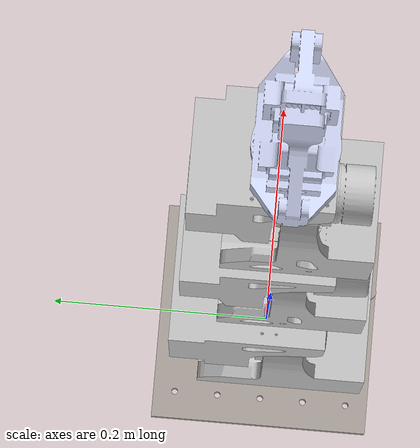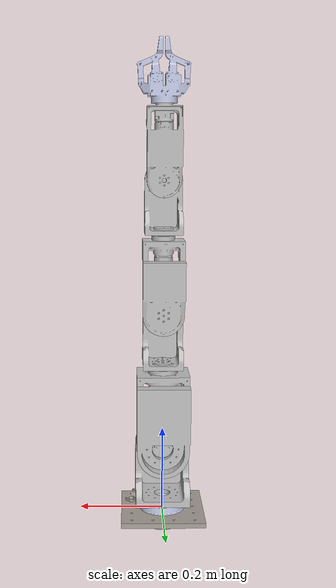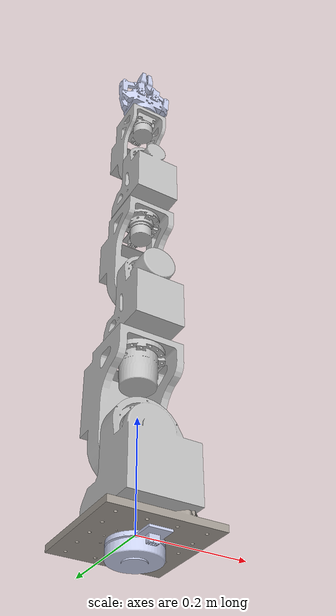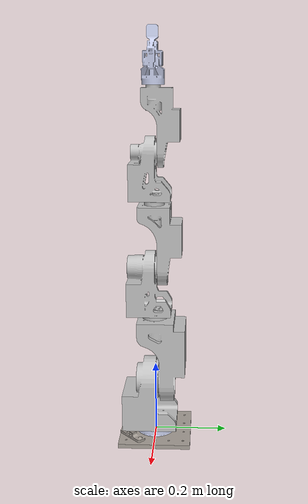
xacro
<robot name="dualarm">

  <link
    name="mani1_base">
    <inertial>
      <origin
        xyz="0.000214133185221511 -0.000263993773760912 -0.00611775454032076"
        rpy="0 0 0" />
      <mass
        value="3.57330907434109" />
      <inertia
        ixx="0.0125043470138794"
        ixy="4.69689009859497E-05"
        ixz="-9.0888380429557E-06"
        iyy="0.0124805069140377"
        iyz="1.10392895970441E-05"
        izz="0.0248975799456784" />
    </inertial>
    <visual>
      <origin
        xyz="0 0 0"
        rpy="0 0 0" />
      <geometry>
        <mesh
          filename="package://dualarm_config/meshes/mani1_base.STL" />
      </geometry>
      <material
        name="">
        <color
          rgba="0.647058823529412 0.619607843137255 0.588235294117647 1" />
      </material>
    </visual>
    <collision>
      <origin
        xyz="0 0 0"
        rpy="0 0 0" />
      <geometry>
        <mesh
          filename="package://dualarm_config/meshes/mani1_base.STL" />
      </geometry>
    </collision>
  </link>

  <gazebo reference="mani1_base">

    		<material>Gazebo/White</material>
  </gazebo>

  <link
    name="mani1_link1">
    <inertial>
      <origin
        xyz="-3.51872665886486E-06 -0.000870878275491564 -0.00474601269745995"
        rpy="0 0 0" />
      <mass
        value="0.446330780520445" />
      <inertia
        ixx="0.000441978892899946"
        ixy="9.59086613795905E-08"
        ixz="6.49516463430428E-08"
        iyy="0.000420405291605374"
        iyz="-5.37864589703489E-06"
        izz="0.000462095403932586" />
    </inertial>
    <visual>
      <origin
        xyz="0 0 0"
        rpy="0 0 0" />
      <geometry>
        <mesh
          filename="package://dualarm_config/meshes/mani1_link1.STL" />
      </geometry>
      <material
        name="">
        <color
          rgba="0.792156862745098 0.819607843137255 0.933333333333333 1" />
      </material>
    </visual>
    <collision>
      <origin
        xyz="0 0 0"
        rpy="0 0 0" />
      <geometry>
        <mesh
          filename="package://dualarm_config/meshes/mani1_link1.STL" />
      </geometry>
    </collision>
  </link>

  <gazebo reference="mani1_link1">

    		<material>Gazebo/White</material>
  </gazebo>

  <joint
    name="mani1_fixed"
    type="fixed">
    <origin
      xyz="0 0 0"
      rpy="0 0 0" />
    <parent
      link="mani1_base" />
    <child
      link="mani1_link1" />
    <axis
      xyz="0 0 0" />
  </joint>

  <link
    name="mani1_link2">
    <inertial>
      <origin
        xyz="-6.49524381623627E-07 -0.0106338062219783 0.0790468559653485"
        rpy="0 0 0" />
      <mass
        value="2.1394698564504" />
      <inertia
        ixx="0.00933388216670083"
        ixy="-8.3479236244943E-07"
        ixz="6.3330829985724E-07"
        iyy="0.0116887123268387"
        iyz="0.000853478442579413"
        izz="0.0054725576811765" />
    </inertial>
    <visual>
      <origin
        xyz="0 0 0"
        rpy="0 0 0" />
      <geometry>
        <mesh
          filename="package://dualarm_config/meshes/mani1_link2.STL" />
      </geometry>
      <material
        name="">
        <color
          rgba="0.752941176470588 0.752941176470588 0.752941176470588 1" />
      </material>
    </visual>
    <collision>
      <origin
        xyz="0 0 0"
        rpy="0 0 0" />
      <geometry>
        <mesh
          filename="package://dualarm_config/meshes/mani1_link2.STL" />
      </geometry>
    </collision>
  </link>

  <gazebo reference="mani1_link2">

    		<material>Gazebo/White</material>
  </gazebo>

  <joint
    name="mani1_joint1"
    type="revolute">
    <origin
      xyz="0 0 0.022"
      rpy="0 0 0" />
    <parent
      link="mani1_link1" />
    <child
      link="mani1_link2" />
    <axis
      xyz="0 0 1" />
    <limit
      lower="-2.74"
      upper="2.74"
      effort="100"
      velocity="0.8" />
  </joint>

  <link
    name="mani1_link3">
    <inertial>
      <origin
        xyz="9.97578023689037E-06 -0.096396260738586 0.0145605378238661"
        rpy="0 0 0" />
      <mass
        value="1.82427493800269" />
      <inertia
        ixx="0.0123597154706515"
        ixy="1.45225672257562E-06"
        ixz="2.66098831293768E-07"
        iyy="0.00465884584470388"
        iyz="-0.0016099441739936"
        izz="0.0145981943825196" />
    </inertial>
    <visual>
      <origin
        xyz="0 0 0"
        rpy="0 0 0" />
      <geometry>
        <mesh
          filename="package://dualarm_config/meshes/mani1_link3.STL" />
      </geometry>
      <material
        name="">
        <color
          rgba="0.752941176470588 0.752941176470588 0.752941176470588 1" />
      </material>
    </visual>
    <collision>
      <origin
        xyz="0 0 0"
        rpy="0 0 0" />
      <geometry>
        <mesh
          filename="package://dualarm_config/meshes/mani1_link3.STL" />
      </geometry>
    </collision>
  </link>

  <gazebo reference="mani1_link3">

    		<material>Gazebo/White</material>
  </gazebo>

  <joint
    name="mani1_joint2"
    type="revolute">
    <origin
      xyz="0 0 0.133"
      rpy="-1.5708 1.0018E-33 -4.3239E-18" />
    <parent
      link="mani1_link2" />
    <child
      link="mani1_link3" />
    <axis
      xyz="0 0 -1" />
    <limit
      lower="-1.52"
      upper="1.52"
      effort="100"
      velocity="0.8" />
  </joint>

  <link
    name="mani1_link4">
    <inertial>
      <origin
        xyz="4.21635561466764E-07 -0.0119138976140091 0.0741259416420922"
        rpy="0 0 0" />
      <mass
        value="1.11094972876502" />
      <inertia
        ixx="0.00436016088344537"
        ixy="-2.3494039962872E-07"
        ixz="-2.01710559005772E-07"
        iyy="0.00465457365898766"
        iyz="0.000583991655089597"
        izz="0.00171072297566677" />
    </inertial>
    <visual>
      <origin
        xyz="0 0 0"
        rpy="0 0 0" />
      <geometry>
        <mesh
          filename="package://dualarm_config/meshes/mani1_link4.STL" />
      </geometry>
      <material
        name="">
        <color
          rgba="0.752941176470588 0.752941176470588 0.752941176470588 1" />
      </material>
    </visual>
    <collision>
      <origin
        xyz="0 0 0"
        rpy="0 0 0" />
      <geometry>
        <mesh
          filename="package://dualarm_config/meshes/mani1_link4.STL" />
      </geometry>
    </collision>
  </link>

  <gazebo reference="mani1_link4">

    		<material>Gazebo/White</material>
  </gazebo>

  <joint
    name="mani1_joint3"
    type="revolute">
    <origin
      xyz="0 -0.2 0"
      rpy="1.5708 -4.3239E-18 0" />
    <parent
      link="mani1_link3" />
    <child
      link="mani1_link4" />
    <axis
      xyz="0 0 1" />
    <limit
      lower="-1.6"
      upper="1.6"
      effort="100"
      velocity="0.8" />
  </joint>

  <link
    name="mani1_link5">
    <inertial>
      <origin
        xyz="1.5231209961995E-05 -0.0885578081506746 0.0139839867335461"
        rpy="0 0 0" />
      <mass
        value="1.10694723668742" />
      <inertia
        ixx="0.00638512740402005"
        ixy="1.26114775658813E-06"
        ixz="-3.67727740947096E-07"
        iyy="0.00179774595704778"
        iyz="-0.000911685772003026"
        izz="0.00712624030232044" />
    </inertial>
    <visual>
      <origin
        xyz="0 0 0"
        rpy="0 0 0" />
      <geometry>
        <mesh
          filename="package://dualarm_config/meshes/mani1_link5.STL" />
      </geometry>
      <material
        name="">
        <color
          rgba="0.752941176470588 0.752941176470588 0.752941176470588 1" />
      </material>
    </visual>
    <collision>
      <origin
        xyz="0 0 0"
        rpy="0 0 0" />
      <geometry>
        <mesh
          filename="package://dualarm_config/meshes/mani1_link5.STL" />
      </geometry>
    </collision>
  </link>

  <gazebo reference="mani1_link5">

    		<material>Gazebo/White</material>
  </gazebo>

  <joint
    name="mani1_joint4"
    type="revolute">
    <origin
      xyz="0 0 0.13"
      rpy="-1.5708 4.3366E-33 -6.2595E-17" />
    <parent
      link="mani1_link4" />
    <child
      link="mani1_link5" />
    <axis
      xyz="0 0 -1" />
    <limit
      lower="-1.78"
      upper="1.78"
      effort="100"
      velocity="0.8" />
  </joint>

  <link
    name="mani1_link6">
    <inertial>
      <origin
        xyz="2.29603452071085E-05 -0.00728511999418746 0.0627583259845416"
        rpy="0 0 0" />
      <mass
        value="0.888624094816857" />
      <inertia
        ixx="0.00300509646393665"
        ixy="1.01694662376443E-06"
        ixz="-8.01641358100054E-07"
        iyy="0.00332210196460049"
        iyz="0.000289757839226491"
        izz="0.00114424445227424" />
    </inertial>
    <visual>
      <origin
        xyz="0 0 0"
        rpy="0 0 0" />
      <geometry>
        <mesh
          filename="package://dualarm_config/meshes/mani1_link6.STL" />
      </geometry>
      <material
        name="">
        <color
          rgba="0.752941176470588 0.752941176470588 0.752941176470588 1" />
      </material>
    </visual>
    <collision>
      <origin
        xyz="0 0 0"
        rpy="0 0 0" />
      <geometry>
        <mesh
          filename="package://dualarm_config/meshes/mani1_link6.STL" />
      </geometry>
    </collision>
  </link>

  <gazebo reference="mani1_link6">

    		<material>Gazebo/White</material>
  </gazebo>

  <joint
    name="mani1_joint5"
    type="revolute">
    <origin
      xyz="0 -0.189 0"
      rpy="1.5708 -6.2595E-17 0" />
    <parent
      link="mani1_link5" />
    <child
      link="mani1_link6" />
    <axis
      xyz="0 0 1" />
    <limit
      lower="-2.35"
      upper="2.35"
      effort="100"
      velocity="0.8" />
  </joint>

  <link
    name="mani1_link7">
    <inertial>
      <origin
        xyz="5.23366069636606E-07 -0.0970566798173588 0.0113923272499066"
        rpy="0 0 0" />
      <mass
        value="0.592227093253045" />
      <inertia
        ixx="0.00265106618523082"
        ixy="-1.63647435150486E-08"
        ixz="-7.36265473728024E-07"
        iyy="0.000643177021908098"
        iyz="-0.000273036189954506"
        izz="0.00292912135647666" />
    </inertial>
    <visual>
      <origin
        xyz="0 0 0"
        rpy="0 0 0" />
      <geometry>
        <mesh
          filename="package://dualarm_config/meshes/mani1_link7.STL" />
      </geometry>
      <material
        name="">
        <color
          rgba="0.752941176470588 0.752941176470588 0.752941176470588 1" />
      </material>
    </visual>
    <collision>
      <origin
        xyz="0 0 0"
        rpy="0 0 0" />
      <geometry>
        <mesh
          filename="package://dualarm_config/meshes/mani1_link7.STL" />
      </geometry>
    </collision>
  </link>

  <gazebo reference="mani1_link7">

    		<material>Gazebo/White</material>
  </gazebo>

  <joint
    name="mani1_joint6"
    type="revolute">
    <origin
      xyz="0 0 0.125"
      rpy="-1.5708 -2.206E-48 2.6193E-32" />
    <parent
      link="mani1_link6" />
    <child
      link="mani1_link7" />
    <axis
      xyz="0 0 -1" />
    <limit
      lower="-1.78"
      upper="1.78"
      effort="100"
      velocity="0.8" />
  </joint>

  <link
    name="mani1_eff">
    <inertial>
      <origin
        xyz="0.00052359 -0.00015741 0.046995"
        rpy="0 0 0" />
      <mass
        value="0.26908" />
      <inertia
        ixx="8.5289E-05"
        ixy="9.3888E-10"
        ixz="-1.0334E-07"
        iyy="0.00013205"
        iyz="-3.8971E-07"
        izz="0.00014078" />
    </inertial>
    <visual>
      <origin
        xyz="0 0 0"
        rpy="0 0 0" />
      <geometry>
        <mesh
          filename="package://dualarm_config/meshes/mani1_eef.STL" />
      </geometry>
      <material
        name="">
        <color
          rgba="0.79216 0.81961 0.93333 1" />
      </material>
    </visual>
    <collision>
      <origin
        xyz="0 0 0"
        rpy="0 0 0" />
      <geometry>
        <mesh
          filename="package://dualarm_config/meshes/mani1_eef.STL" />
      </geometry>
    </collision>
  </link>

  <gazebo reference="mani1_eff">
    		<material>Gazebo/White</material>
  </gazebo>

  <joint
    name="mani1_joint7"
    type="revolute">
    <origin
      xyz="0 -0.175 0.0"
      rpy="1.5708 0 0" />
    <parent
      link="mani1_link7" />
    <child
      link="mani1_eff" />
    <axis
      xyz="0 0 1" />
    <limit
      lower="-2.61"
      upper="2.61"
      effort="100"
      velocity="0.8" />
  </joint>

<!-- distance between two manipulator is 46cm (=0.46/2 =0.23) -->
<!-- height between base origin to manipulator base is 11.2cm (=0.112) -->

<!-- Transmissions for ROS Control -->

  <transmission name="left_tran1">
    <type>transmission_interface/SimpleTransmission</type>
    <joint name="mani1_joint1">
      <hardwareInterface>hardware_interface/PositionJointInterface</hardwareInterface>
    </joint>
    <actuator name="left_motor1">
      <hardwareInterface>hardware_interface/PositionJointInterface</hardwareInterface>
      <mechanicalReduction>1</mechanicalReduction>
    </actuator>
  </transmission>
  <transmission name="left_tran2">
    <type>transmission_interface/SimpleTransmission</type>
    <joint name="mani1_joint2">
      <hardwareInterface>hardware_interface/PositionJointInterface</hardwareInterface>
    </joint>
    <actuator name="left_motor2">
      <hardwareInterface>hardware_interface/PositionJointInterface</hardwareInterface>
      <mechanicalReduction>1</mechanicalReduction>
    </actuator>
  </transmission>
  <transmission name="left_tran3">
    <type>transmission_interface/SimpleTransmission</type>
    <joint name="mani1_joint3">
      <hardwareInterface>hardware_interface/PositionJointInterface</hardwareInterface>
    </joint>
    <actuator name="left_motor3">
      <hardwareInterface>hardware_interface/PositionJointInterface</hardwareInterface>
      <mechanicalReduction>1</mechanicalReduction>
    </actuator>
  </transmission>
  <transmission name="left_tran4">
    <type>transmission_interface/SimpleTransmission</type>
    <joint name="mani1_joint4">
      <hardwareInterface>hardware_interface/PositionJointInterface</hardwareInterface>
    </joint>
    <actuator name="left_motor4">
      <hardwareInterface>hardware_interface/PositionJointInterface</hardwareInterface>
      <mechanicalReduction>1</mechanicalReduction>
    </actuator>
  </transmission>
  <transmission name="left_tran5">
    <type>transmission_interface/SimpleTransmission</type>
    <joint name="mani1_joint5">
      <hardwareInterface>hardware_interface/PositionJointInterface</hardwareInterface>
    </joint>
    <actuator name="left_motor5">
      <hardwareInterface>hardware_interface/PositionJointInterface</hardwareInterface>
      <mechanicalReduction>1</mechanicalReduction>
    </actuator>
  </transmission>
  <transmission name="left_tran6">
    <type>transmission_interface/SimpleTransmission</type>
    <joint name="mani1_joint6">
      <hardwareInterface>hardware_interface/PositionJointInterface</hardwareInterface>
    </joint>
    <actuator name="left_motor6">
      <hardwareInterface>hardware_interface/PositionJointInterface</hardwareInterface>
      <mechanicalReduction>1</mechanicalReduction>
    </actuator>
  </transmission>
  <transmission name="left_tran7">
    <type>transmission_interface/SimpleTransmission</type>
    <joint name="mani1_joint7">
      <hardwareInterface>hardware_interface/PositionJointInterface</hardwareInterface>
    </joint>
    <actuator name="left_motor7">
      <hardwareInterface>hardware_interface/PositionJointInterface</hardwareInterface>
      <mechanicalReduction>1</mechanicalReduction>
    </actuator>
  </transmission>

</robot>
